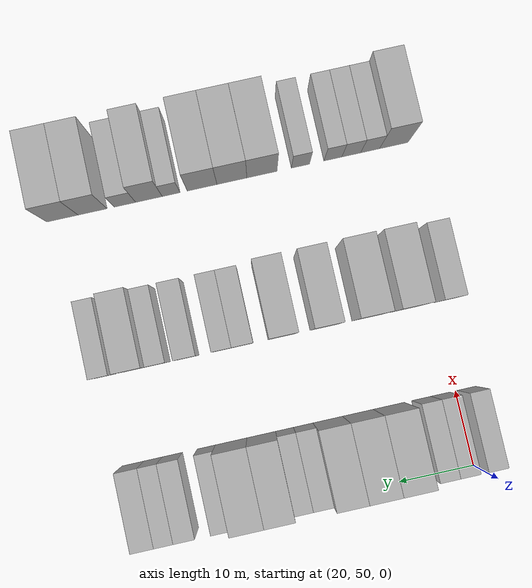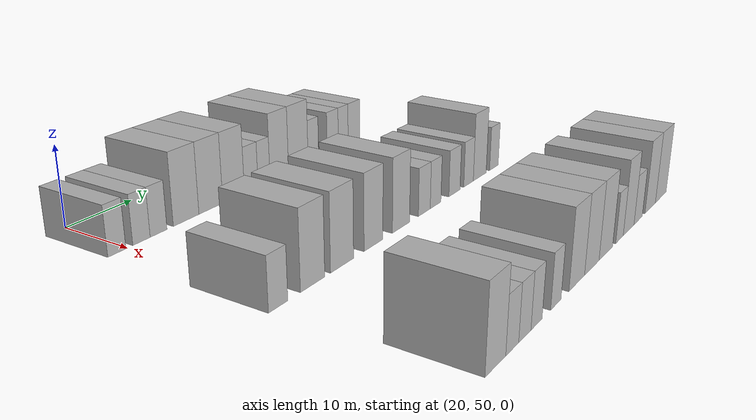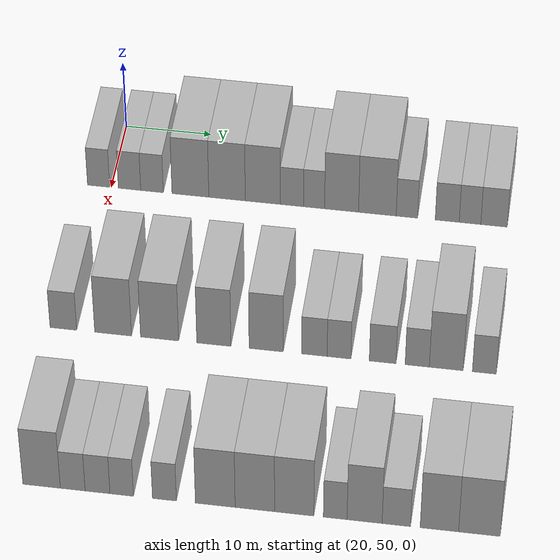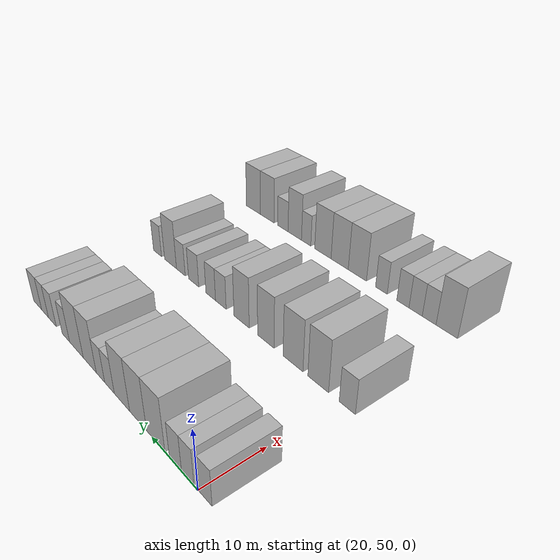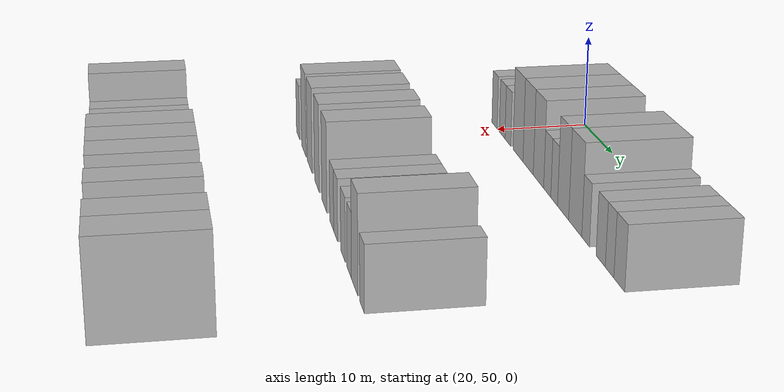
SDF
<sdf version="1.6">
 <world name="default">
  <model name="building_79">
   <static>1</static>
   <pose>25.0000 48.5405 0 0.000000 0.000000 0.000000</pose>
   <link name="link">
    <pose>0 0 3.00 0 0 0</pose>
    <collision name="collision"><geometry><box><size>10.0000 2.5583 6.0000</size></box></geometry></collision>
    <visual name="visual">
     <cast_shadows>0</cast_shadows>
     <geometry><box><size>10.0000 2.5583 6.0000</size></box></geometry>
     <material>
      <script>
       <uri>model://HANNAS_wall/materials/scripts</uri>
       <uri>model://HANNAS_wall/materials/textures</uri>
       <name>vrc/HANNAS_wall</name>
      </script>
     </material>
    </visual>
   </link>
  </model>
  <model name="building_80">
   <static>1</static>
   <pose>25.0000 52.1111 0 0.000000 0.000000 0.000000</pose>
   <link name="link">
    <pose>0 0 3.00 0 0 0</pose>
    <collision name="collision"><geometry><box><size>10.0000 2.5828 6.0000</size></box></geometry></collision>
    <visual name="visual">
     <cast_shadows>0</cast_shadows>
     <geometry><box><size>10.0000 2.5828 6.0000</size></box></geometry>
     <material>
      <script>
       <uri>model://HANNAS_wall/materials/scripts</uri>
       <uri>model://HANNAS_wall/materials/textures</uri>
       <name>vrc/HANNAS_wall</name>
      </script>
     </material>
    </visual>
   </link>
  </model>
  <model name="building_81">
   <static>1</static>
   <pose>25.0000 54.7055 0 0.000000 0.000000 0.000000</pose>
   <link name="link">
    <pose>0 0 3.00 0 0 0</pose>
    <collision name="collision"><geometry><box><size>10.0000 2.6060 6.0000</size></box></geometry></collision>
    <visual name="visual">
     <cast_shadows>0</cast_shadows>
     <geometry><box><size>10.0000 2.6060 6.0000</size></box></geometry>
     <material>
      <script>
       <uri>model://HANNAS_wall/materials/scripts</uri>
       <uri>model://HANNAS_wall/materials/textures</uri>
       <name>vrc/HANNAS_wall</name>
      </script>
     </material>
    </visual>
   </link>
  </model>
  <model name="building_82">
   <static>1</static>
   <pose>25.0000 59.1252 0 0.000000 0.000000 0.000000</pose>
   <link name="link">
    <pose>0 0 4.50 0 0 0</pose>
    <collision name="collision"><geometry><box><size>10.0000 4.2336 9.0000</size></box></geometry></collision>
    <visual name="visual">
     <cast_shadows>0</cast_shadows>
     <geometry><box><size>10.0000 4.2336 9.0000</size></box></geometry>
     <material>
      <script>
       <uri>model://HANNAS_wall/materials/scripts</uri>
       <uri>model://HANNAS_wall/materials/textures</uri>
       <name>vrc/HANNAS_wall</name>
      </script>
     </material>
    </visual>
   </link>
  </model>
  <model name="building_83">
   <static>1</static>
   <pose>25.0000 63.3339 0 0.000000 0.000000 0.000000</pose>
   <link name="link">
    <pose>0 0 4.50 0 0 0</pose>
    <collision name="collision"><geometry><box><size>10.0000 4.1838 9.0000</size></box></geometry></collision>
    <visual name="visual">
     <cast_shadows>0</cast_shadows>
     <geometry><box><size>10.0000 4.1838 9.0000</size></box></geometry>
     <material>
      <script>
       <uri>model://HANNAS_wall/materials/scripts</uri>
       <uri>model://HANNAS_wall/materials/textures</uri>
       <name>vrc/HANNAS_wall</name>
      </script>
     </material>
    </visual>
   </link>
  </model>
  <model name="building_84">
   <static>1</static>
   <pose>25.0000 67.4356 0 0.000000 0.000000 0.000000</pose>
   <link name="link">
    <pose>0 0 4.50 0 0 0</pose>
    <collision name="collision"><geometry><box><size>10.0000 4.0194 9.0000</size></box></geometry></collision>
    <visual name="visual">
     <cast_shadows>0</cast_shadows>
     <geometry><box><size>10.0000 4.0194 9.0000</size></box></geometry>
     <material>
      <script>
       <uri>model://HANNAS_wall/materials/scripts</uri>
       <uri>model://HANNAS_wall/materials/textures</uri>
       <name>vrc/HANNAS_wall</name>
      </script>
     </material>
    </visual>
   </link>
  </model>
  <model name="building_85">
   <static>1</static>
   <pose>25.0000 70.7655 0 0.000000 0.000000 0.000000</pose>
   <link name="link">
    <pose>0 0 3.00 0 0 0</pose>
    <collision name="collision"><geometry><box><size>10.0000 2.6405 6.0000</size></box></geometry></collision>
    <visual name="visual">
     <cast_shadows>0</cast_shadows>
     <geometry><box><size>10.0000 2.6405 6.0000</size></box></geometry>
     <material>
      <script>
       <uri>model://HANNAS_wall/materials/scripts</uri>
       <uri>model://HANNAS_wall/materials/textures</uri>
       <name>vrc/HANNAS_wall</name>
      </script>
     </material>
    </visual>
   </link>
  </model>
  <model name="building_86">
   <static>1</static>
   <pose>25.0000 73.2905 0 0.000000 0.000000 0.000000</pose>
   <link name="link">
    <pose>0 0 3.00 0 0 0</pose>
    <collision name="collision"><geometry><box><size>10.0000 2.4094 6.0000</size></box></geometry></collision>
    <visual name="visual">
     <cast_shadows>0</cast_shadows>
     <geometry><box><size>10.0000 2.4094 6.0000</size></box></geometry>
     <material>
      <script>
       <uri>model://HANNAS_wall/materials/scripts</uri>
       <uri>model://HANNAS_wall/materials/textures</uri>
       <name>vrc/HANNAS_wall</name>
      </script>
     </material>
    </visual>
   </link>
  </model>
  <model name="building_87">
   <static>1</static>
   <pose>25.0000 76.4296 0 0.000000 0.000000 0.000000</pose>
   <link name="link">
    <pose>0 0 4.50 0 0 0</pose>
    <collision name="collision"><geometry><box><size>10.0000 3.8688 9.0000</size></box></geometry></collision>
    <visual name="visual">
     <cast_shadows>0</cast_shadows>
     <geometry><box><size>10.0000 3.8688 9.0000</size></box></geometry>
     <material>
      <script>
       <uri>model://HANNAS_wall/materials/scripts</uri>
       <uri>model://HANNAS_wall/materials/textures</uri>
       <name>vrc/HANNAS_wall</name>
      </script>
     </material>
    </visual>
   </link>
  </model>
  <model name="building_88">
   <static>1</static>
   <pose>25.0000 80.5083 0 0.000000 0.000000 0.000000</pose>
   <link name="link">
    <pose>0 0 4.50 0 0 0</pose>
    <collision name="collision"><geometry><box><size>10.0000 4.2887 9.0000</size></box></geometry></collision>
    <visual name="visual">
     <cast_shadows>0</cast_shadows>
     <geometry><box><size>10.0000 4.2887 9.0000</size></box></geometry>
     <material>
      <script>
       <uri>model://HANNAS_wall/materials/scripts</uri>
       <uri>model://HANNAS_wall/materials/textures</uri>
       <name>vrc/HANNAS_wall</name>
      </script>
     </material>
    </visual>
   </link>
  </model>
  <model name="building_89">
   <static>1</static>
   <pose>25.0000 83.8661 0 0.000000 0.000000 0.000000</pose>
   <link name="link">
    <pose>0 0 3.00 0 0 0</pose>
    <collision name="collision"><geometry><box><size>10.0000 2.4269 6.0000</size></box></geometry></collision>
    <visual name="visual">
     <cast_shadows>0</cast_shadows>
     <geometry><box><size>10.0000 2.4269 6.0000</size></box></geometry>
     <material>
      <script>
       <uri>model://HANNAS_wall/materials/scripts</uri>
       <uri>model://HANNAS_wall/materials/textures</uri>
       <name>vrc/HANNAS_wall</name>
      </script>
     </material>
    </visual>
   </link>
  </model>
  <model name="building_90">
   <static>1</static>
   <pose>25.0000 88.4380 0 0.000000 0.000000 0.000000</pose>
   <link name="link">
    <pose>0 0 3.00 0 0 0</pose>
    <collision name="collision"><geometry><box><size>10.0000 2.7169 6.0000</size></box></geometry></collision>
    <visual name="visual">
     <cast_shadows>0</cast_shadows>
     <geometry><box><size>10.0000 2.7169 6.0000</size></box></geometry>
     <material>
      <script>
       <uri>model://HANNAS_wall/materials/scripts</uri>
       <uri>model://HANNAS_wall/materials/textures</uri>
       <name>vrc/HANNAS_wall</name>
      </script>
     </material>
    </visual>
   </link>
  </model>
  <model name="building_91">
   <static>1</static>
   <pose>25.0000 91.0174 0 0.000000 0.000000 0.000000</pose>
   <link name="link">
    <pose>0 0 3.00 0 0 0</pose>
    <collision name="collision"><geometry><box><size>10.0000 2.4419 6.0000</size></box></geometry></collision>
    <visual name="visual">
     <cast_shadows>0</cast_shadows>
     <geometry><box><size>10.0000 2.4419 6.0000</size></box></geometry>
     <material>
      <script>
       <uri>model://HANNAS_wall/materials/scripts</uri>
       <uri>model://HANNAS_wall/materials/textures</uri>
       <name>vrc/HANNAS_wall</name>
      </script>
     </material>
    </visual>
   </link>
  </model>
  <model name="building_92">
   <static>1</static>
   <pose>25.0000 93.7304 0 0.000000 0.000000 0.000000</pose>
   <link name="link">
    <pose>0 0 3.00 0 0 0</pose>
    <collision name="collision"><geometry><box><size>10.0000 2.9841 6.0000</size></box></geometry></collision>
    <visual name="visual">
     <cast_shadows>0</cast_shadows>
     <geometry><box><size>10.0000 2.9841 6.0000</size></box></geometry>
     <material>
      <script>
       <uri>model://HANNAS_wall/materials/scripts</uri>
       <uri>model://HANNAS_wall/materials/textures</uri>
       <name>vrc/HANNAS_wall</name>
      </script>
     </material>
    </visual>
   </link>
  </model>
  <model name="building_206">
   <static>1</static>
   <pose>47.0000 48.5873 0 0.000000 0.000000 0.000000</pose>
   <link name="link">
    <pose>0 0 3.00 0 0 0</pose>
    <collision name="collision"><geometry><box><size>10.0000 2.9526 6.0000</size></box></geometry></collision>
    <visual name="visual">
     <cast_shadows>0</cast_shadows>
     <geometry><box><size>10.0000 2.9526 6.0000</size></box></geometry>
     <material>
      <script>
       <uri>model://HANNAS_wall/materials/scripts</uri>
       <uri>model://HANNAS_wall/materials/textures</uri>
       <name>vrc/HANNAS_wall</name>
      </script>
     </material>
    </visual>
   </link>
  </model>
  <model name="building_207">
   <static>1</static>
   <pose>47.0000 54.0988 0 0.000000 0.000000 0.000000</pose>
   <link name="link">
    <pose>0 0 4.50 0 0 0</pose>
    <collision name="collision"><geometry><box><size>10.0000 4.0703 9.0000</size></box></geometry></collision>
    <visual name="visual">
     <cast_shadows>0</cast_shadows>
     <geometry><box><size>10.0000 4.0703 9.0000</size></box></geometry>
     <material>
      <script>
       <uri>model://HANNAS_wall/materials/scripts</uri>
       <uri>model://HANNAS_wall/materials/textures</uri>
       <name>vrc/HANNAS_wall</name>
      </script>
     </material>
    </visual>
   </link>
  </model>
  <model name="building_208">
   <static>1</static>
   <pose>47.0000 59.2337 0 0.000000 0.000000 0.000000</pose>
   <link name="link">
    <pose>0 0 4.50 0 0 0</pose>
    <collision name="collision"><geometry><box><size>10.0000 4.1995 9.0000</size></box></geometry></collision>
    <visual name="visual">
     <cast_shadows>0</cast_shadows>
     <geometry><box><size>10.0000 4.1995 9.0000</size></box></geometry>
     <material>
      <script>
       <uri>model://HANNAS_wall/materials/scripts</uri>
       <uri>model://HANNAS_wall/materials/textures</uri>
       <name>vrc/HANNAS_wall</name>
      </script>
     </material>
    </visual>
   </link>
  </model>
  <model name="building_209">
   <static>1</static>
   <pose>47.0000 65.2082 0 0.000000 0.000000 0.000000</pose>
   <link name="link">
    <pose>0 0 4.50 0 0 0</pose>
    <collision name="collision"><geometry><box><size>10.0000 3.7494 9.0000</size></box></geometry></collision>
    <visual name="visual">
     <cast_shadows>0</cast_shadows>
     <geometry><box><size>10.0000 3.7494 9.0000</size></box></geometry>
     <material>
      <script>
       <uri>model://HANNAS_wall/materials/scripts</uri>
       <uri>model://HANNAS_wall/materials/textures</uri>
       <name>vrc/HANNAS_wall</name>
      </script>
     </material>
    </visual>
   </link>
  </model>
  <model name="building_210">
   <static>1</static>
   <pose>47.0000 70.9546 0 0.000000 0.000000 0.000000</pose>
   <link name="link">
    <pose>0 0 4.50 0 0 0</pose>
    <collision name="collision"><geometry><box><size>10.0000 3.7433 9.0000</size></box></geometry></collision>
    <visual name="visual">
     <cast_shadows>0</cast_shadows>
     <geometry><box><size>10.0000 3.7433 9.0000</size></box></geometry>
     <material>
      <script>
       <uri>model://HANNAS_wall/materials/scripts</uri>
       <uri>model://HANNAS_wall/materials/textures</uri>
       <name>vrc/HANNAS_wall</name>
      </script>
     </material>
    </visual>
   </link>
  </model>
  <model name="building_211">
   <static>1</static>
   <pose>47.0000 76.2236 0 0.000000 0.000000 0.000000</pose>
   <link name="link">
    <pose>0 0 3.00 0 0 0</pose>
    <collision name="collision"><geometry><box><size>10.0000 2.7949 6.0000</size></box></geometry></collision>
    <visual name="visual">
     <cast_shadows>0</cast_shadows>
     <geometry><box><size>10.0000 2.7949 6.0000</size></box></geometry>
     <material>
      <script>
       <uri>model://HANNAS_wall/materials/scripts</uri>
       <uri>model://HANNAS_wall/materials/textures</uri>
       <name>vrc/HANNAS_wall</name>
      </script>
     </material>
    </visual>
   </link>
  </model>
  <model name="building_212">
   <static>1</static>
   <pose>47.0000 78.9237 0 0.000000 0.000000 0.000000</pose>
   <link name="link">
    <pose>0 0 3.00 0 0 0</pose>
    <collision name="collision"><geometry><box><size>10.0000 2.6053 6.0000</size></box></geometry></collision>
    <visual name="visual">
     <cast_shadows>0</cast_shadows>
     <geometry><box><size>10.0000 2.6053 6.0000</size></box></geometry>
     <material>
      <script>
       <uri>model://HANNAS_wall/materials/scripts</uri>
       <uri>model://HANNAS_wall/materials/textures</uri>
       <name>vrc/HANNAS_wall</name>
      </script>
     </material>
    </visual>
   </link>
  </model>
  <model name="building_213">
   <static>1</static>
   <pose>47.0000 83.6803 0 0.000000 0.000000 0.000000</pose>
   <link name="link">
    <pose>0 0 3.00 0 0 0</pose>
    <collision name="collision"><geometry><box><size>10.0000 2.9078 6.0000</size></box></geometry></collision>
    <visual name="visual">
     <cast_shadows>0</cast_shadows>
     <geometry><box><size>10.0000 2.9078 6.0000</size></box></geometry>
     <material>
      <script>
       <uri>model://HANNAS_wall/materials/scripts</uri>
       <uri>model://HANNAS_wall/materials/textures</uri>
       <name>vrc/HANNAS_wall</name>
      </script>
     </material>
    </visual>
   </link>
  </model>
  <model name="building_214">
   <static>1</static>
   <pose>47.0000 87.4477 0 0.000000 0.000000 0.000000</pose>
   <link name="link">
    <pose>0 0 3.00 0 0 0</pose>
    <collision name="collision"><geometry><box><size>10.0000 2.6271 6.0000</size></box></geometry></collision>
    <visual name="visual">
     <cast_shadows>0</cast_shadows>
     <geometry><box><size>10.0000 2.6271 6.0000</size></box></geometry>
     <material>
      <script>
       <uri>model://HANNAS_wall/materials/scripts</uri>
       <uri>model://HANNAS_wall/materials/textures</uri>
       <name>vrc/HANNAS_wall</name>
      </script>
     </material>
    </visual>
   </link>
  </model>
  <model name="building_215">
   <static>1</static>
   <pose>47.0000 90.5943 0 0.000000 0.000000 0.000000</pose>
   <link name="link">
    <pose>0 0 4.50 0 0 0</pose>
    <collision name="collision"><geometry><box><size>10.0000 3.6659 9.0000</size></box></geometry></collision>
    <visual name="visual">
     <cast_shadows>0</cast_shadows>
     <geometry><box><size>10.0000 3.6659 9.0000</size></box></geometry>
     <material>
      <script>
       <uri>model://HANNAS_wall/materials/scripts</uri>
       <uri>model://HANNAS_wall/materials/textures</uri>
       <name>vrc/HANNAS_wall</name>
      </script>
     </material>
    </visual>
   </link>
  </model>
  <model name="building_216">
   <static>1</static>
   <pose>47.0000 94.7193 0 0.000000 0.000000 0.000000</pose>
   <link name="link">
    <pose>0 0 3.00 0 0 0</pose>
    <collision name="collision"><geometry><box><size>10.0000 2.5842 6.0000</size></box></geometry></collision>
    <visual name="visual">
     <cast_shadows>0</cast_shadows>
     <geometry><box><size>10.0000 2.5842 6.0000</size></box></geometry>
     <material>
      <script>
       <uri>model://HANNAS_wall/materials/scripts</uri>
       <uri>model://HANNAS_wall/materials/textures</uri>
       <name>vrc/HANNAS_wall</name>
      </script>
     </material>
    </visual>
   </link>
  </model>
  <model name="building_323">
   <static>1</static>
   <pose>69.0000 50.4025 0 0.000000 0.000000 0.000000</pose>
   <link name="link">
    <pose>0 0 4.50 0 0 0</pose>
    <collision name="collision"><geometry><box><size>10.0000 3.9740 9.0000</size></box></geometry></collision>
    <visual name="visual">
     <cast_shadows>0</cast_shadows>
     <geometry><box><size>10.0000 3.9740 9.0000</size></box></geometry>
     <material>
      <script>
       <uri>model://HANNAS_wall/materials/scripts</uri>
       <uri>model://HANNAS_wall/materials/textures</uri>
       <name>vrc/HANNAS_wall</name>
      </script>
     </material>
    </visual>
   </link>
  </model>
  <model name="building_324">
   <static>1</static>
   <pose>69.0000 53.7053 0 0.000000 0.000000 0.000000</pose>
   <link name="link">
    <pose>0 0 3.00 0 0 0</pose>
    <collision name="collision"><geometry><box><size>10.0000 2.6316 6.0000</size></box></geometry></collision>
    <visual name="visual">
     <cast_shadows>0</cast_shadows>
     <geometry><box><size>10.0000 2.6316 6.0000</size></box></geometry>
     <material>
      <script>
       <uri>model://HANNAS_wall/materials/scripts</uri>
       <uri>model://HANNAS_wall/materials/textures</uri>
       <name>vrc/HANNAS_wall</name>
      </script>
     </material>
    </visual>
   </link>
  </model>
  <model name="building_325">
   <static>1</static>
   <pose>69.0000 56.3324 0 0.000000 0.000000 0.000000</pose>
   <link name="link">
    <pose>0 0 3.00 0 0 0</pose>
    <collision name="collision"><geometry><box><size>10.0000 2.6226 6.0000</size></box></geometry></collision>
    <visual name="visual">
     <cast_shadows>0</cast_shadows>
     <geometry><box><size>10.0000 2.6226 6.0000</size></box></geometry>
     <material>
      <script>
       <uri>model://HANNAS_wall/materials/scripts</uri>
       <uri>model://HANNAS_wall/materials/textures</uri>
       <name>vrc/HANNAS_wall</name>
      </script>
     </material>
    </visual>
   </link>
  </model>
  <model name="building_326">
   <static>1</static>
   <pose>69.0000 58.8902 0 0.000000 0.000000 0.000000</pose>
   <link name="link">
    <pose>0 0 3.00 0 0 0</pose>
    <collision name="collision"><geometry><box><size>10.0000 2.4930 6.0000</size></box></geometry></collision>
    <visual name="visual">
     <cast_shadows>0</cast_shadows>
     <geometry><box><size>10.0000 2.4930 6.0000</size></box></geometry>
     <material>
      <script>
       <uri>model://HANNAS_wall/materials/scripts</uri>
       <uri>model://HANNAS_wall/materials/textures</uri>
       <name>vrc/HANNAS_wall</name>
      </script>
     </material>
    </visual>
   </link>
  </model>
  <model name="building_327">
   <static>1</static>
   <pose>69.0000 63.3982 0 0.000000 0.000000 0.000000</pose>
   <link name="link">
    <pose>0 0 3.00 0 0 0</pose>
    <collision name="collision"><geometry><box><size>10.0000 2.5232 6.0000</size></box></geometry></collision>
    <visual name="visual">
     <cast_shadows>0</cast_shadows>
     <geometry><box><size>10.0000 2.5232 6.0000</size></box></geometry>
     <material>
      <script>
       <uri>model://HANNAS_wall/materials/scripts</uri>
       <uri>model://HANNAS_wall/materials/textures</uri>
       <name>vrc/HANNAS_wall</name>
      </script>
     </material>
    </visual>
   </link>
  </model>
  <model name="building_328">
   <static>1</static>
   <pose>69.0000 68.7476 0 0.000000 0.000000 0.000000</pose>
   <link name="link">
    <pose>0 0 4.50 0 0 0</pose>
    <collision name="collision"><geometry><box><size>10.0000 4.1755 9.0000</size></box></geometry></collision>
    <visual name="visual">
     <cast_shadows>0</cast_shadows>
     <geometry><box><size>10.0000 4.1755 9.0000</size></box></geometry>
     <material>
      <script>
       <uri>model://HANNAS_wall/materials/scripts</uri>
       <uri>model://HANNAS_wall/materials/textures</uri>
       <name>vrc/HANNAS_wall</name>
      </script>
     </material>
    </visual>
   </link>
  </model>
  <model name="building_329">
   <static>1</static>
   <pose>69.0000 72.9015 0 0.000000 0.000000 0.000000</pose>
   <link name="link">
    <pose>0 0 4.50 0 0 0</pose>
    <collision name="collision"><geometry><box><size>10.0000 4.1322 9.0000</size></box></geometry></collision>
    <visual name="visual">
     <cast_shadows>0</cast_shadows>
     <geometry><box><size>10.0000 4.1322 9.0000</size></box></geometry>
     <material>
      <script>
       <uri>model://HANNAS_wall/materials/scripts</uri>
       <uri>model://HANNAS_wall/materials/textures</uri>
       <name>vrc/HANNAS_wall</name>
      </script>
     </material>
    </visual>
   </link>
  </model>
  <model name="building_330">
   <static>1</static>
   <pose>69.0000 77.0228 0 0.000000 0.000000 0.000000</pose>
   <link name="link">
    <pose>0 0 4.50 0 0 0</pose>
    <collision name="collision"><geometry><box><size>10.0000 4.1105 9.0000</size></box></geometry></collision>
    <visual name="visual">
     <cast_shadows>0</cast_shadows>
     <geometry><box><size>10.0000 4.1105 9.0000</size></box></geometry>
     <material>
      <script>
       <uri>model://HANNAS_wall/materials/scripts</uri>
       <uri>model://HANNAS_wall/materials/textures</uri>
       <name>vrc/HANNAS_wall</name>
      </script>
     </material>
    </visual>
   </link>
  </model>
  <model name="building_331">
   <static>1</static>
   <pose>69.0000 81.3083 0 0.000000 0.000000 0.000000</pose>
   <link name="link">
    <pose>0 0 3.00 0 0 0</pose>
    <collision name="collision"><geometry><box><size>10.0000 2.4604 6.0000</size></box></geometry></collision>
    <visual name="visual">
     <cast_shadows>0</cast_shadows>
     <geometry><box><size>10.0000 2.4604 6.0000</size></box></geometry>
     <material>
      <script>
       <uri>model://HANNAS_wall/materials/scripts</uri>
       <uri>model://HANNAS_wall/materials/textures</uri>
       <name>vrc/HANNAS_wall</name>
      </script>
     </material>
    </visual>
   </link>
  </model>
  <model name="building_332">
   <static>1</static>
   <pose>69.0000 84.3690 0 0.000000 0.000000 0.000000</pose>
   <link name="link">
    <pose>0 0 4.50 0 0 0</pose>
    <collision name="collision"><geometry><box><size>10.0000 3.6610 9.0000</size></box></geometry></collision>
    <visual name="visual">
     <cast_shadows>0</cast_shadows>
     <geometry><box><size>10.0000 3.6610 9.0000</size></box></geometry>
     <material>
      <script>
       <uri>model://HANNAS_wall/materials/scripts</uri>
       <uri>model://HANNAS_wall/materials/textures</uri>
       <name>vrc/HANNAS_wall</name>
      </script>
     </material>
    </visual>
   </link>
  </model>
  <model name="building_333">
   <static>1</static>
   <pose>69.0000 87.6759 0 0.000000 0.000000 0.000000</pose>
   <link name="link">
    <pose>0 0 3.00 0 0 0</pose>
    <collision name="collision"><geometry><box><size>10.0000 2.9529 6.0000</size></box></geometry></collision>
    <visual name="visual">
     <cast_shadows>0</cast_shadows>
     <geometry><box><size>10.0000 2.9529 6.0000</size></box></geometry>
     <material>
      <script>
       <uri>model://HANNAS_wall/materials/scripts</uri>
       <uri>model://HANNAS_wall/materials/textures</uri>
       <name>vrc/HANNAS_wall</name>
      </script>
     </material>
    </visual>
   </link>
  </model>
  <model name="building_334">
   <static>1</static>
   <pose>69.0000 92.1453 0 0.000000 0.000000 0.000000</pose>
   <link name="link">
    <pose>0 0 4.50 0 0 0</pose>
    <collision name="collision"><geometry><box><size>10.0000 3.9860 9.0000</size></box></geometry></collision>
    <visual name="visual">
     <cast_shadows>0</cast_shadows>
     <geometry><box><size>10.0000 3.9860 9.0000</size></box></geometry>
     <material>
      <script>
       <uri>model://HANNAS_wall/materials/scripts</uri>
       <uri>model://HANNAS_wall/materials/textures</uri>
       <name>vrc/HANNAS_wall</name>
      </script>
     </material>
    </visual>
   </link>
  </model>
  <model name="building_335">
   <static>1</static>
   <pose>69.0000 96.2926 0 0.000000 0.000000 0.000000</pose>
   <link name="link">
    <pose>0 0 4.50 0 0 0</pose>
    <collision name="collision"><geometry><box><size>10.0000 4.3087 9.0000</size></box></geometry></collision>
    <visual name="visual">
     <cast_shadows>0</cast_shadows>
     <geometry><box><size>10.0000 4.3087 9.0000</size></box></geometry>
     <material>
      <script>
       <uri>model://HANNAS_wall/materials/scripts</uri>
       <uri>model://HANNAS_wall/materials/textures</uri>
       <name>vrc/HANNAS_wall</name>
      </script>
     </material>
    </visual>
   </link>
  </model>
 </world>
</sdf>
